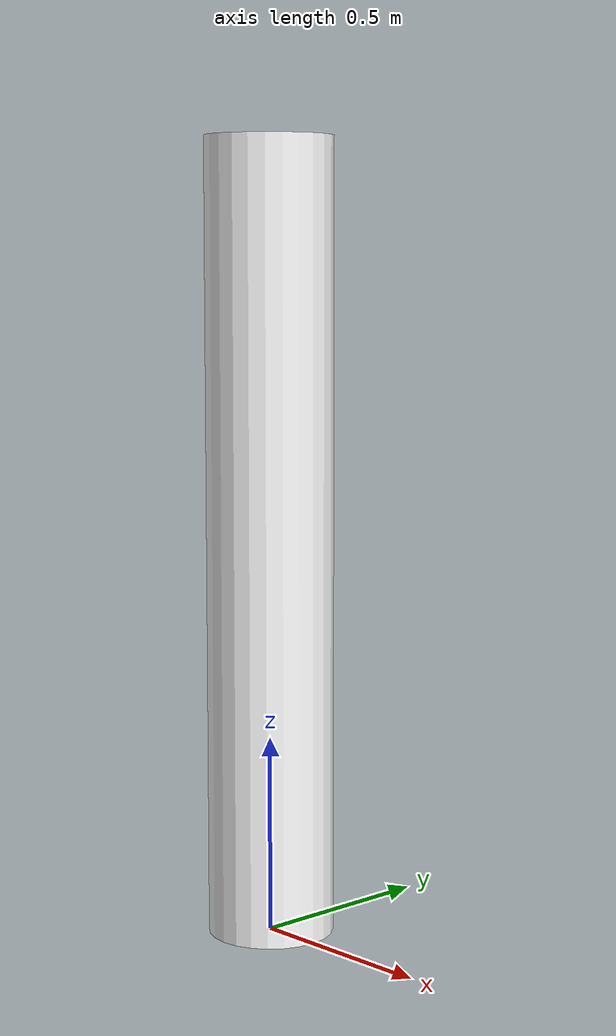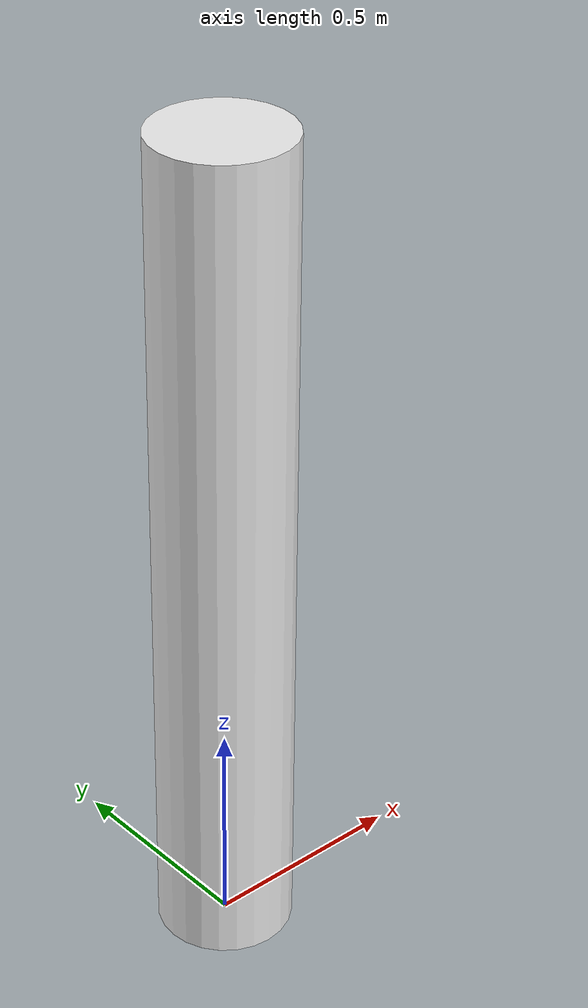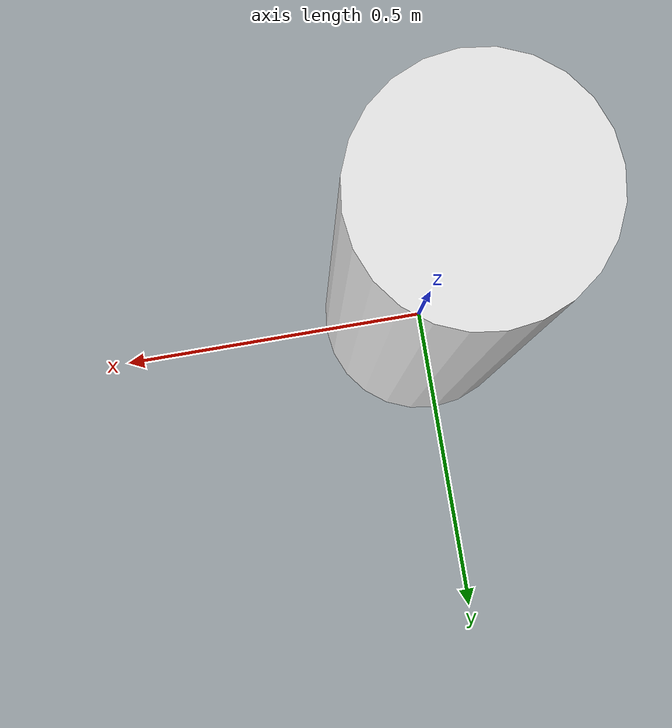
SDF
<?xml version="1.0" ?>
<sdf version="1.5">
  <model name="AIGC2_pole_30cm">
    <static>true</static>
    <link name="link">
      <pose>0 0 1.0 0 0 0</pose>
      <collision name="collision">
        <geometry>
            <cylinder>
              <radius>.159</radius>
              <length>2.0</length>
            </cylinder>
        </geometry>
      </collision>
      <visual name="visual">
        <cast_shadows>true</cast_shadows>
        <geometry>
            <cylinder>
              <radius>.159</radius>
              <length>2.0</length>
            </cylinder>
        </geometry>
        <material>
          <script>
            <name>Gazebo/White</name>
            <uri>file://media/materials/scripts/gazebo.material</uri>
          </script>
        </material>
      </visual>
    </link>
  </model>
</sdf>
